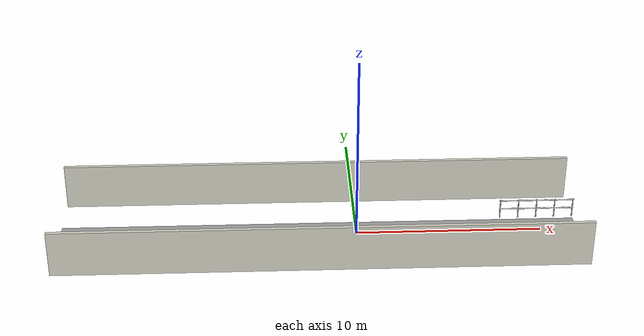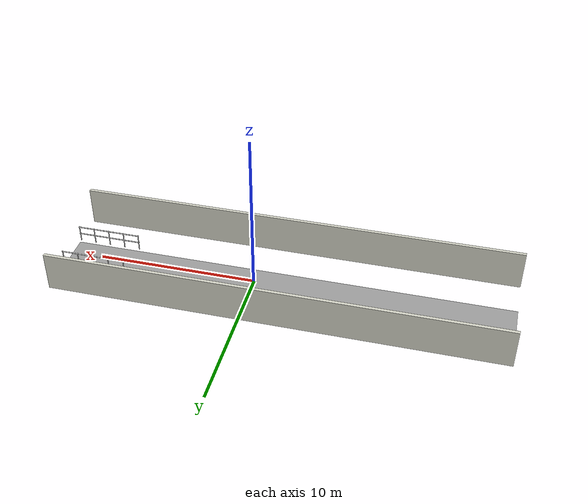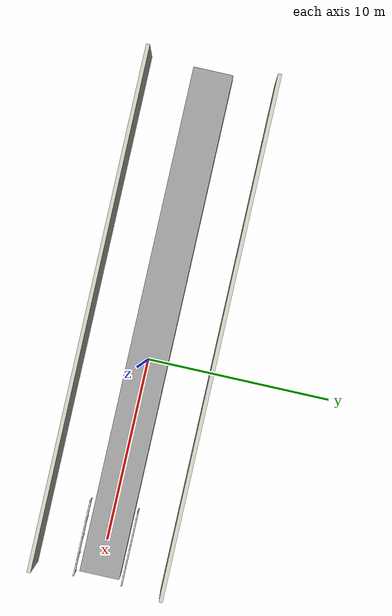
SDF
<sdf version="1.6">
 <world name="default">
  <model name="deck_near">
   <static>true</static>
   <pose>-2 0 -0.75 0 0 0</pose>
   <link name="link">
    <collision name="c">
     <geometry><box><size>28 2.2 1.5</size></box></geometry>
     <surface><friction><ode><mu>1.0</mu><mu2>1.0</mu2></ode></friction></surface>
    </collision>
    <visual name="v">
     <geometry><box><size>28 2.2 1.5</size></box></geometry>
     <material>
      <script><uri>file://media/materials/scripts/gazebo.material</uri><name>Gazebo/Grey</name></script>
     </material>
    </visual>
   </link>
  </model>
  <model name="wall_py">
   <static>true</static>
   <pose>-2 3.5 1.25 0 0 0</pose>
   <link name="link">
    <collision name="c">
     <geometry><box><size>28 0.2 2.5</size></box></geometry>
     <surface><friction><ode><mu>1.0</mu><mu2>1.0</mu2></ode></friction></surface>
    </collision>
    <visual name="v">
     <geometry><box><size>28 0.2 2.5</size></box></geometry>
     <material>
      <script><uri>file://media/materials/scripts/gazebo.material</uri><name>Gazebo/PaintedWall</name></script>
     </material>
    </visual>
   </link>
  </model>
  <model name="wall_my">
   <static>true</static>
   <pose>-2 -3.5 1.25 0 0 0</pose>
   <link name="link">
    <collision name="c">
     <geometry><box><size>28 0.2 2.5</size></box></geometry>
     <surface><friction><ode><mu>1.0</mu><mu2>1.0</mu2></ode></friction></surface>
    </collision>
    <visual name="v">
     <geometry><box><size>28 0.2 2.5</size></box></geometry>
     <material>
      <script><uri>file://media/materials/scripts/gazebo.material</uri><name>Gazebo/PaintedWall</name></script>
     </material>
    </visual>
   </link>
  </model>
  <model name="rail_py">
   <static>true</static>
   <link name="link">
    <collision name="c_s0">
     <pose>8 1.3 0.55 0 0 0</pose>
     <geometry><cylinder><radius>0.03</radius><length>1.1</length></cylinder></geometry>
    </collision>
    <visual name="s0">
     <pose>8 1.3 0.55 0 0 0</pose>
     <geometry><cylinder><radius>0.03</radius><length>1.1</length></cylinder></geometry>
     <material>
      <script><uri>file://media/materials/scripts/gazebo.material</uri><name>Gazebo/White</name></script>
     </material>
    </visual>
    <collision name="c_s1">
     <pose>9 1.3 0.55 0 0 0</pose>
     <geometry><cylinder><radius>0.03</radius><length>1.1</length></cylinder></geometry>
    </collision>
    <visual name="s1">
     <pose>9 1.3 0.55 0 0 0</pose>
     <geometry><cylinder><radius>0.03</radius><length>1.1</length></cylinder></geometry>
     <material>
      <script><uri>file://media/materials/scripts/gazebo.material</uri><name>Gazebo/White</name></script>
     </material>
    </visual>
    <collision name="c_s2">
     <pose>10 1.3 0.55 0 0 0</pose>
     <geometry><cylinder><radius>0.03</radius><length>1.1</length></cylinder></geometry>
    </collision>
    <visual name="s2">
     <pose>10 1.3 0.55 0 0 0</pose>
     <geometry><cylinder><radius>0.03</radius><length>1.1</length></cylinder></geometry>
     <material>
      <script><uri>file://media/materials/scripts/gazebo.material</uri><name>Gazebo/White</name></script>
     </material>
    </visual>
    <collision name="c_s3">
     <pose>11 1.3 0.55 0 0 0</pose>
     <geometry><cylinder><radius>0.03</radius><length>1.1</length></cylinder></geometry>
    </collision>
    <visual name="s3">
     <pose>11 1.3 0.55 0 0 0</pose>
     <geometry><cylinder><radius>0.03</radius><length>1.1</length></cylinder></geometry>
     <material>
      <script><uri>file://media/materials/scripts/gazebo.material</uri><name>Gazebo/White</name></script>
     </material>
    </visual>
    <collision name="c_s4">
     <pose>12 1.3 0.55 0 0 0</pose>
     <geometry><cylinder><radius>0.03</radius><length>1.1</length></cylinder></geometry>
    </collision>
    <visual name="s4">
     <pose>12 1.3 0.55 0 0 0</pose>
     <geometry><cylinder><radius>0.03</radius><length>1.1</length></cylinder></geometry>
     <material>
      <script><uri>file://media/materials/scripts/gazebo.material</uri><name>Gazebo/White</name></script>
     </material>
    </visual>
    <collision name="c_s5">
     <pose>10 1.3 1.05 0 1.5708 0</pose>
     <geometry><cylinder><radius>0.035</radius><length>4.1</length></cylinder></geometry>
    </collision>
    <visual name="s5">
     <pose>10 1.3 1.05 0 1.5708 0</pose>
     <geometry><cylinder><radius>0.035</radius><length>4.1</length></cylinder></geometry>
     <material>
      <script><uri>file://media/materials/scripts/gazebo.material</uri><name>Gazebo/White</name></script>
     </material>
    </visual>
    <collision name="c_s6">
     <pose>10 1.3 0.55 0 1.5708 0</pose>
     <geometry><cylinder><radius>0.035</radius><length>4.1</length></cylinder></geometry>
    </collision>
    <visual name="s6">
     <pose>10 1.3 0.55 0 1.5708 0</pose>
     <geometry><cylinder><radius>0.035</radius><length>4.1</length></cylinder></geometry>
     <material>
      <script><uri>file://media/materials/scripts/gazebo.material</uri><name>Gazebo/White</name></script>
     </material>
    </visual>
   </link>
  </model>
  <model name="rail_my">
   <static>true</static>
   <link name="link">
    <collision name="c_s0">
     <pose>8 -1.3 0.55 0 0 0</pose>
     <geometry><cylinder><radius>0.03</radius><length>1.1</length></cylinder></geometry>
    </collision>
    <visual name="s0">
     <pose>8 -1.3 0.55 0 0 0</pose>
     <geometry><cylinder><radius>0.03</radius><length>1.1</length></cylinder></geometry>
     <material>
      <script><uri>file://media/materials/scripts/gazebo.material</uri><name>Gazebo/White</name></script>
     </material>
    </visual>
    <collision name="c_s1">
     <pose>9 -1.3 0.55 0 0 0</pose>
     <geometry><cylinder><radius>0.03</radius><length>1.1</length></cylinder></geometry>
    </collision>
    <visual name="s1">
     <pose>9 -1.3 0.55 0 0 0</pose>
     <geometry><cylinder><radius>0.03</radius><length>1.1</length></cylinder></geometry>
     <material>
      <script><uri>file://media/materials/scripts/gazebo.material</uri><name>Gazebo/White</name></script>
     </material>
    </visual>
    <collision name="c_s2">
     <pose>10 -1.3 0.55 0 0 0</pose>
     <geometry><cylinder><radius>0.03</radius><length>1.1</length></cylinder></geometry>
    </collision>
    <visual name="s2">
     <pose>10 -1.3 0.55 0 0 0</pose>
     <geometry><cylinder><radius>0.03</radius><length>1.1</length></cylinder></geometry>
     <material>
      <script><uri>file://media/materials/scripts/gazebo.material</uri><name>Gazebo/White</name></script>
     </material>
    </visual>
    <collision name="c_s3">
     <pose>11 -1.3 0.55 0 0 0</pose>
     <geometry><cylinder><radius>0.03</radius><length>1.1</length></cylinder></geometry>
    </collision>
    <visual name="s3">
     <pose>11 -1.3 0.55 0 0 0</pose>
     <geometry><cylinder><radius>0.03</radius><length>1.1</length></cylinder></geometry>
     <material>
      <script><uri>file://media/materials/scripts/gazebo.material</uri><name>Gazebo/White</name></script>
     </material>
    </visual>
    <collision name="c_s4">
     <pose>12 -1.3 0.55 0 0 0</pose>
     <geometry><cylinder><radius>0.03</radius><length>1.1</length></cylinder></geometry>
    </collision>
    <visual name="s4">
     <pose>12 -1.3 0.55 0 0 0</pose>
     <geometry><cylinder><radius>0.03</radius><length>1.1</length></cylinder></geometry>
     <material>
      <script><uri>file://media/materials/scripts/gazebo.material</uri><name>Gazebo/White</name></script>
     </material>
    </visual>
    <collision name="c_s5">
     <pose>10 -1.3 1.05 0 1.5708 0</pose>
     <geometry><cylinder><radius>0.035</radius><length>4.1</length></cylinder></geometry>
    </collision>
    <visual name="s5">
     <pose>10 -1.3 1.05 0 1.5708 0</pose>
     <geometry><cylinder><radius>0.035</radius><length>4.1</length></cylinder></geometry>
     <material>
      <script><uri>file://media/materials/scripts/gazebo.material</uri><name>Gazebo/White</name></script>
     </material>
    </visual>
    <collision name="c_s6">
     <pose>10 -1.3 0.55 0 1.5708 0</pose>
     <geometry><cylinder><radius>0.035</radius><length>4.1</length></cylinder></geometry>
    </collision>
    <visual name="s6">
     <pose>10 -1.3 0.55 0 1.5708 0</pose>
     <geometry><cylinder><radius>0.035</radius><length>4.1</length></cylinder></geometry>
     <material>
      <script><uri>file://media/materials/scripts/gazebo.material</uri><name>Gazebo/White</name></script>
     </material>
    </visual>
   </link>
  </model>
 </world>
</sdf>
